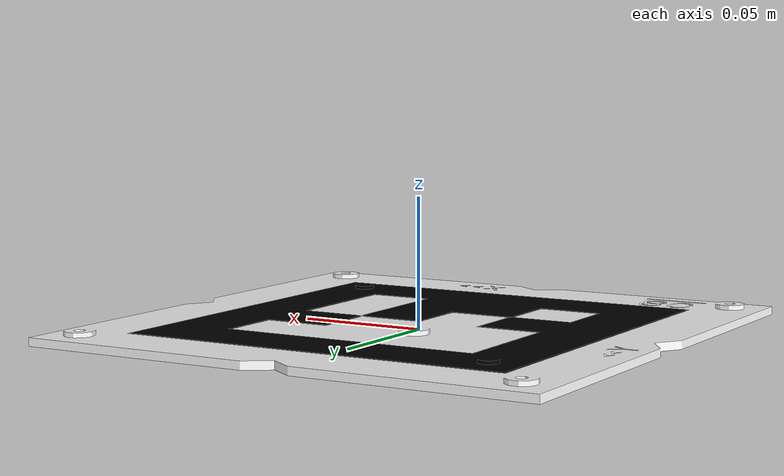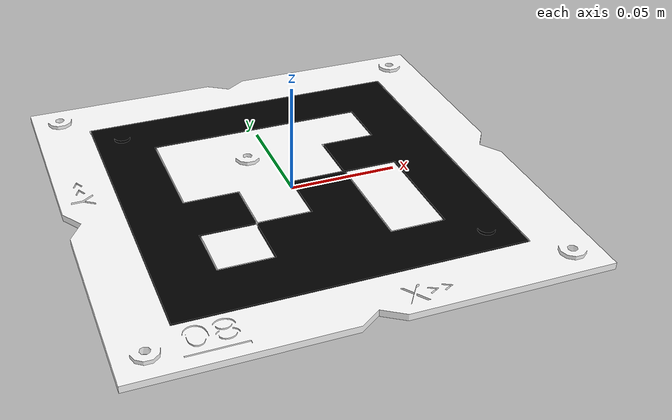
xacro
<robot name="id07_16h5" xmlns:xacro="http://ros.org/wiki/xacro">

	<xacro:property name="X_PI" value="3.1415926535897931" />
	<xacro:property name="X_id" value="id08_16h5" />
	<link name="${X_id}/base_footprint"/>
	<joint name="base_joint" type="fixed">
		<origin xyz="0 0 0" rpy="0 0 0" />
		<parent link="${X_id}/base_footprint"/>
		<child link="${X_id}/base_link" />
	</joint>
	<joint name="fill_joint" type="fixed">
		<origin xyz="0 0 ${0.06*0.0254}" rpy="0 0 0" />
		<parent link="${X_id}/base_link"/>
		<child link="${X_id}/fill_link" />
	</joint>

	<link name="${X_id}/base_link">
		<visual>
			<geometry>
				<mesh filename="package://robot_descriptions/tags/dae/${X_id}_white.dae" />
			</geometry>
			<origin xyz="0 0 0" rpy="0 0 0"/>
			<material name="white"/>
		</visual>
		<collision>
			<geometry>
				<box size="${8*0.0254} ${8*0.0254} 0.001"/>
			</geometry>
			<origin xyz="0 0 0" rpy="0 0 0"/>
		</collision>
		<inertial>
			<mass value="1"/> <!-- 2.4/2.6 kg for small/big battery pack -->
			<origin xyz="0 0 0"/>
			<inertia ixx="1" ixy="0.0" ixz="0.0" iyy="1" iyz="0.0" izz="1" />
		</inertial>
	</link>

	<link name="${X_id}/fill_link">
		<visual>
			<geometry>
				<mesh filename="package://robot_descriptions/tags/dae/${X_id}_black.dae" />
			</geometry>
			<origin xyz="0 0 0" rpy="0 0 0"/>
			<material name="black"/>
		</visual>
		<collision>
			<geometry>
				<box size="${6*0.0254} ${6*0.0254} 0.001"/>
			</geometry>
			<origin xyz="0 0 0" rpy="0 0 0"/>
		</collision>
		<inertial>
			<mass value="1"/> <!-- 2.4/2.6 kg for small/big battery pack -->
			<origin xyz="0 0 0"/>
			<inertia ixx="1" ixy="0.0" ixz="0.0" iyy="1" iyz="0.0" izz="1" />
		</inertial>
	</link>

	<gazebo reference="${X_id}/base_link">
		<material>Gazebo/White</material>
	</gazebo>
	<gazebo reference="${X_id}/fill_link">
		<material>Gazebo/Black</material>
	</gazebo>
	<material name="black">
		<color rgba="0 0 0 1"/>
	</material>
	<material name="white">
		<color rgba="1 1 1 1"/>
	</material>

</robot>
